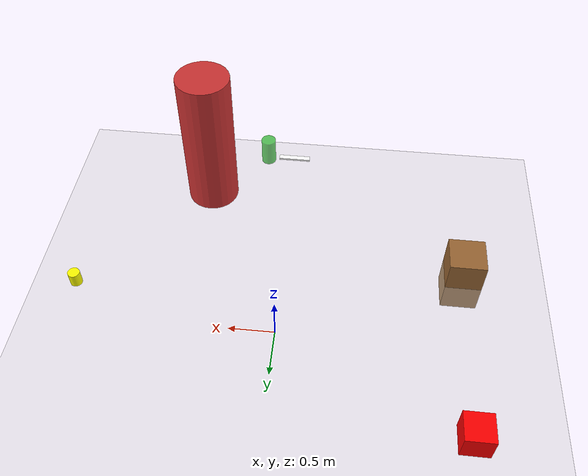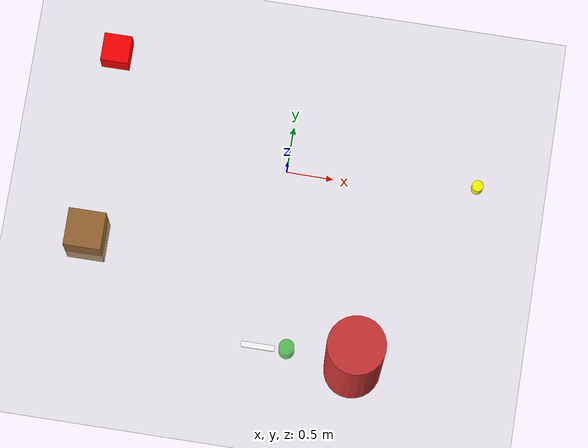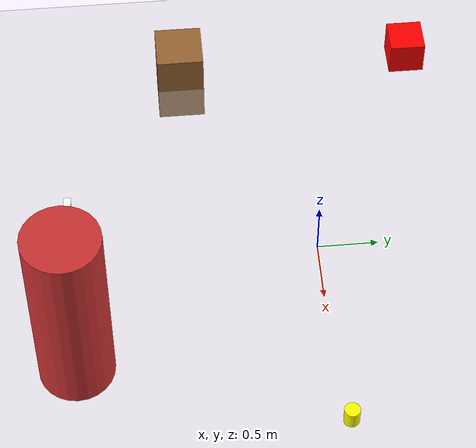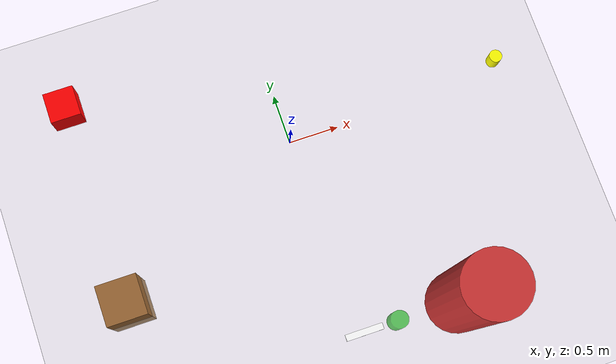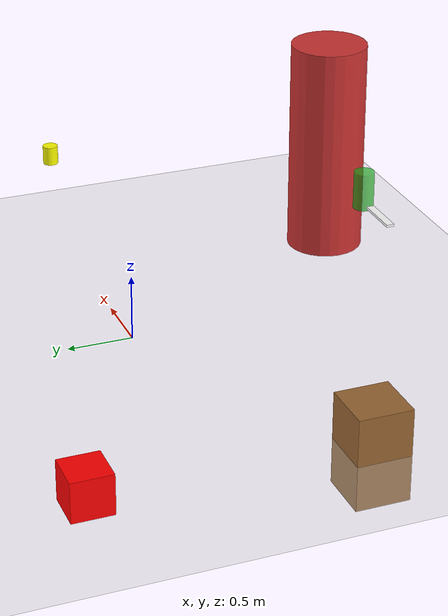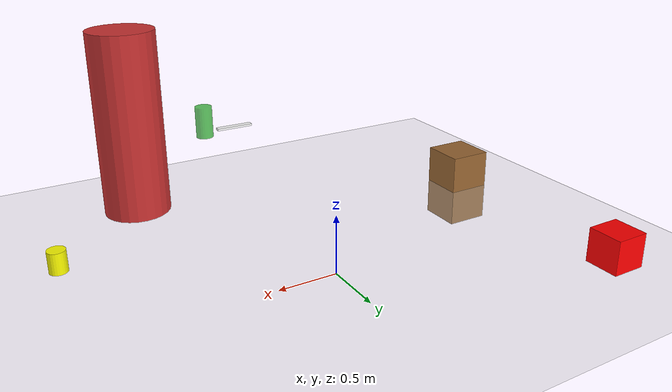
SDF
<sdf version="1.7">
 <world name="house_world">
  <include><uri>model://ground_plane</uri></include>
  <include><uri>model://sun</uri></include>
  <model name="person">
   <pose>1 -2 0.85 0 0 0</pose>
   <link name="body">
    <inertial><mass>70</mass><inertia><ixx>2</ixx><iyy>2</iyy><izz>0.5</izz></inertia></inertial>
    <collision name="torso">
     <geometry><cylinder><radius>0.3</radius><length>1.7</length></cylinder></geometry>
    </collision>
    <visual name="torso_visual">
     <geometry><cylinder><radius>0.3</radius><length>1.7</length></cylinder></geometry>
     <material><ambient>0.8 0.2 0.2 1</ambient><diffuse>0.8 0.2 0.2 1</diffuse></material>
    </visual>
   </link>
  </model>
  <model name="knife">
   <pose>0 -2 0.65 0 0 0</pose>
   <link name="blade">
    <visual name="visual">
     <geometry><box><size>0.35 0.06 0.02</size></box></geometry>
     <material><ambient>1 1 1 1</ambient><diffuse>1 1 1 1</diffuse></material>
    </visual>
   </link>
  </model>
  <model name="bottle">
   <pose>0.3 -2 0.75 0 0 0</pose>
   <link name="container">
    <inertial><mass>0.8</mass><inertia><ixx>0.01</ixx><iyy>0.01</iyy><izz>0.005</izz></inertia></inertial>
    <collision name="bottle_collision">
     <geometry><cylinder><radius>0.08</radius><length>0.3</length></cylinder></geometry>
    </collision>
    <visual name="bottle_visual">
     <geometry><cylinder><radius>0.08</radius><length>0.3</length></cylinder></geometry>
     <material><ambient>0.1 0.7 0.1 0.7</ambient><diffuse>0.1 0.7 0.1 0.7</diffuse></material>
    </visual>
   </link>
  </model>
  <model name="cup">
   <pose>2 0 0.675 0 0 0</pose>
   <link name="cup_body">
    <inertial><mass>0.3</mass><inertia><ixx>0.001</ixx><iyy>0.001</iyy><izz>0.001</izz></inertia></inertial>
    <collision name="cup_collision">
     <geometry><cylinder><radius>0.06</radius><length>0.15</length></cylinder></geometry>
    </collision>
    <visual name="cup_visual">
     <geometry><cylinder><radius>0.06</radius><length>0.15</length></cylinder></geometry>
     <material><ambient>1 1 0 1</ambient><diffuse>1 1 0 1</diffuse></material>
    </visual>
   </link>
  </model>
  <model name="chair">
   <pose>-2 -1 0 0 0 0</pose>
   <link name="seat">
    <inertial><mass>5</mass><inertia><ixx>0.1</ixx><iyy>0.1</iyy><izz>0.1</izz></inertia></inertial>
    <collision name="chair_collision"><geometry><box><size>0.4 0.4 0.7</size></box></geometry></collision>
    <visual name="chair_visual">
     <geometry><box><size>0.4 0.4 0.7</size></box></geometry>
     <material><ambient>0.6 0.4 0.2 1</ambient><diffuse>0.6 0.4 0.2 1</diffuse></material>
    </visual>
   </link>
  </model>
  <model name="box">
   <pose>-2 1 0.15 0 0 0</pose>
   <link name="box_body">
    <inertial><mass>2</mass><inertia><ixx>0.05</ixx><iyy>0.05</iyy><izz>0.05</izz></inertia></inertial>
    <collision name="box_collision"><geometry><box><size>0.3 0.3 0.3</size></box></geometry></collision>
    <visual name="box_visual">
     <geometry><box><size>0.3 0.3 0.3</size></box></geometry>
     <material><ambient>1 0 0 1</ambient><diffuse>1 0 0 1</diffuse></material>
    </visual>
   </link>
  </model>
 </world>
</sdf>
